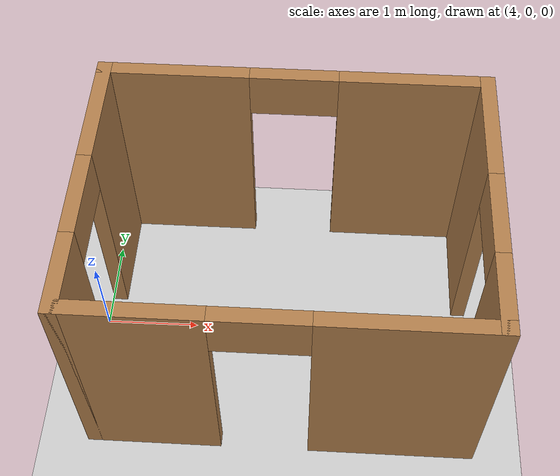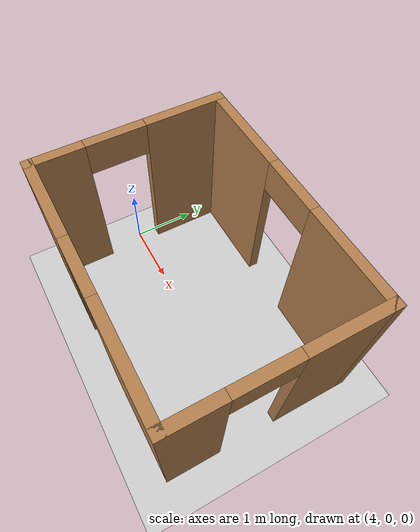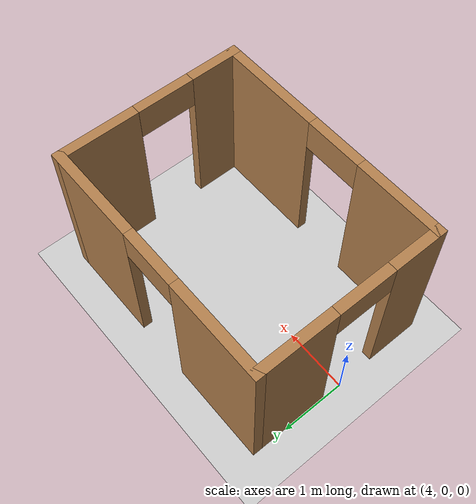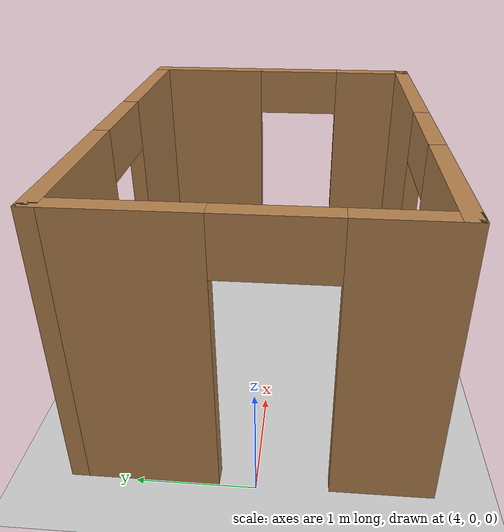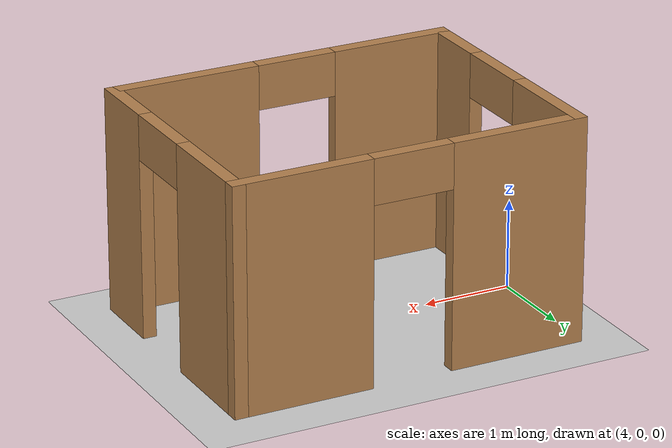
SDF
<sdf version="1.7">
 <world name="default">
  <light name="sun" type="directional">
   <pose>0 0 10 0 -0 0</pose>
   <diffuse>0.8 0.8 0.8 1</diffuse>
   <specular>0.2 0.2 0.2 1</specular>
   <attenuation>
    <range>1000</range>
    <constant>0.9</constant>
    <linear>0.01</linear>
    <quadratic>0.001</quadratic>
   </attenuation>
   <direction>-0.5 0.1 -0.9</direction>
   <spot><inner_angle>0</inner_angle><outer_angle>0</outer_angle><falloff>0</falloff></spot>
  </light>
  <model name="ground_plane">
   <static>1</static>
   <link name="link">
    <collision name="collision">
     <geometry><plane><normal>0 0 1</normal><size>100 100</size></plane></geometry>
     <surface><friction><ode><mu>100</mu><mu2>50</mu2></ode></friction></surface>
    </collision>
    <visual name="visual">
     <cast_shadows>0</cast_shadows>
     <geometry><plane><normal>0 0 1</normal><size>100 100</size></plane></geometry>
     <material>
      <script><uri>file://media/materials/scripts/gazebo.material</uri><name>Gazebo/Grey</name></script>
     </material>
    </visual>
   </link>
  </model>
  <gravity>0 0 -9.8</gravity>
  <magnetic_field>6e-06 2.3e-05 -4.2e-05</magnetic_field>
  <atmosphere type="adiabatic"/>
  <physics type="ode">
   <max_step_size>0.001</max_step_size>
   <real_time_factor>1</real_time_factor>
   <real_time_update_rate>1000</real_time_update_rate>
  </physics>
  <scene><ambient>0.4 0.4 0.4 1</ambient><background>0.7 0.7 0.7 1</background><shadows>1</shadows></scene>
  <spherical_coordinates>
   <surface_model>EARTH_WGS84</surface_model>
   <latitude_deg>0</latitude_deg>
   <longitude_deg>0</longitude_deg>
   <elevation>0</elevation>
   <heading_deg>0</heading_deg>
  </spherical_coordinates>
  <model name="3_4house和">
   <pose>6.01198 0.053385 0 0 -0 0</pose>
   <link name="Wall_0">
    <pose>0 -1.425 0 0 -0 0</pose>
    <visual name="Wall_0_Visual_0">
     <pose>-1.3025 0 1.25 0 -0 0</pose>
     <geometry><box><size>1.395 0.15 2.5</size></box></geometry>
     <material>
      <script><uri>file://media/materials/scripts/gazebo.material</uri><name>Gazebo/Wood</name></script>
      <ambient>1 1 1 1</ambient>
     </material>
     <meta><layer>0</layer></meta>
    </visual>
    <collision name="Wall_0_Collision_0">
     <geometry><box><size>1.395 0.15 2.5</size></box></geometry>
     <pose>-1.3025 0 1.25 0 -0 0</pose>
    </collision>
    <visual name="Wall_0_Visual_1">
     <pose>1.1475 0 1.25 0 -0 0</pose>
     <geometry><box><size>1.705 0.15 2.5</size></box></geometry>
     <material>
      <script><uri>file://media/materials/scripts/gazebo.material</uri><name>Gazebo/Wood</name></script>
      <ambient>1 1 1 1</ambient>
     </material>
     <meta><layer>0</layer></meta>
    </visual>
    <collision name="Wall_0_Collision_1">
     <geometry><box><size>1.705 0.15 2.5</size></box></geometry>
     <pose>1.1475 0 1.25 0 -0 0</pose>
    </collision>
    <visual name="Wall_0_Visual_2">
     <pose>-0.155 0 2.25 0 -0 0</pose>
     <geometry><box><size>0.9 0.15 0.5</size></box></geometry>
     <material>
      <script><uri>file://media/materials/scripts/gazebo.material</uri><name>Gazebo/Wood</name></script>
      <ambient>1 1 1 1</ambient>
     </material>
     <meta><layer>0</layer></meta>
    </visual>
    <collision name="Wall_0_Collision_2">
     <geometry><box><size>0.9 0.15 0.5</size></box></geometry>
     <pose>-0.155 0 2.25 0 -0 0</pose>
    </collision>
   </link>
   <link name="Wall_1">
    <pose>1.925 0 0 0 -0 1.5708</pose>
    <visual name="Wall_1_Visual_0">
     <pose>-1.08089 0 1.25 0 -0 0</pose>
     <geometry><box><size>0.83821 0.15 2.5</size></box></geometry>
     <material>
      <script><uri>file://media/materials/scripts/gazebo.material</uri><name>Gazebo/Wood</name></script>
      <ambient>1 1 1 1</ambient>
     </material>
     <meta><layer>0</layer></meta>
    </visual>
    <collision name="Wall_1_Collision_0">
     <geometry><box><size>0.83821 0.15 2.5</size></box></geometry>
     <pose>-1.08089 0 1.25 0 -0 0</pose>
    </collision>
    <visual name="Wall_1_Visual_1">
     <pose>0.869105 0 1.25 0 -0 0</pose>
     <geometry><box><size>1.26179 0.15 2.5</size></box></geometry>
     <material>
      <script><uri>file://media/materials/scripts/gazebo.material</uri><name>Gazebo/Wood</name></script>
      <ambient>1 1 1 1</ambient>
     </material>
     <meta><layer>0</layer></meta>
    </visual>
    <collision name="Wall_1_Collision_1">
     <geometry><box><size>1.26179 0.15 2.5</size></box></geometry>
     <pose>0.869105 0 1.25 0 -0 0</pose>
    </collision>
    <visual name="Wall_1_Visual_2">
     <pose>-0.21179 0 2.25 0 -0 0</pose>
     <geometry><box><size>0.9 0.15 0.5</size></box></geometry>
     <material>
      <script><uri>file://media/materials/scripts/gazebo.material</uri><name>Gazebo/Wood</name></script>
      <ambient>1 1 1 1</ambient>
     </material>
     <meta><layer>0</layer></meta>
    </visual>
    <collision name="Wall_1_Collision_2">
     <geometry><box><size>0.9 0.15 0.5</size></box></geometry>
     <pose>-0.21179 0 2.25 0 -0 0</pose>
    </collision>
   </link>
   <link name="Wall_2">
    <pose>0 1.425 0 0 -0 3.14159</pose>
    <visual name="Wall_2_Visual_0">
     <pose>-1.22225 0 1.25 0 -0 0</pose>
     <geometry><box><size>1.5555 0.15 2.5</size></box></geometry>
     <material>
      <script><uri>file://media/materials/scripts/gazebo.material</uri><name>Gazebo/Wood</name></script>
      <ambient>1 1 1 1</ambient>
     </material>
     <meta><layer>0</layer></meta>
    </visual>
    <collision name="Wall_2_Collision_0">
     <geometry><box><size>1.5555 0.15 2.5</size></box></geometry>
     <pose>-1.22225 0 1.25 0 -0 0</pose>
    </collision>
    <visual name="Wall_2_Visual_1">
     <pose>1.22775 0 1.25 0 -0 0</pose>
     <geometry><box><size>1.5445 0.15 2.5</size></box></geometry>
     <material>
      <script><uri>file://media/materials/scripts/gazebo.material</uri><name>Gazebo/Wood</name></script>
      <ambient>1 1 1 1</ambient>
     </material>
     <meta><layer>0</layer></meta>
    </visual>
    <collision name="Wall_2_Collision_1">
     <geometry><box><size>1.5445 0.15 2.5</size></box></geometry>
     <pose>1.22775 0 1.25 0 -0 0</pose>
    </collision>
    <visual name="Wall_2_Visual_2">
     <pose>0.0055 0 2.25 0 -0 0</pose>
     <geometry><box><size>0.9 0.15 0.5</size></box></geometry>
     <material>
      <script><uri>file://media/materials/scripts/gazebo.material</uri><name>Gazebo/Wood</name></script>
      <ambient>1 1 1 1</ambient>
     </material>
     <meta><layer>0</layer></meta>
    </visual>
    <collision name="Wall_2_Collision_2">
     <geometry><box><size>0.9 0.15 0.5</size></box></geometry>
     <pose>0.0055 0 2.25 0 -0 0</pose>
    </collision>
   </link>
   <link name="Wall_3">
    <pose>-1.925 0 0 0 -0 -1.5708</pose>
    <visual name="Wall_3_Visual_0">
     <pose>-0.87625 0 1.25 0 -0 0</pose>
     <geometry><box><size>1.2475 0.15 2.5</size></box></geometry>
     <material>
      <script><uri>file://media/materials/scripts/gazebo.material</uri><name>Gazebo/Wood</name></script>
      <ambient>1 1 1 1</ambient>
     </material>
     <meta><layer>0</layer></meta>
    </visual>
    <collision name="Wall_3_Collision_0">
     <geometry><box><size>1.2475 0.15 2.5</size></box></geometry>
     <pose>-0.87625 0 1.25 0 -0 0</pose>
    </collision>
    <visual name="Wall_3_Visual_1">
     <pose>1.07375 0 1.25 0 -0 0</pose>
     <geometry><box><size>0.8525 0.15 2.5</size></box></geometry>
     <material>
      <script><uri>file://media/materials/scripts/gazebo.material</uri><name>Gazebo/Wood</name></script>
      <ambient>1 1 1 1</ambient>
     </material>
     <meta><layer>0</layer></meta>
    </visual>
    <collision name="Wall_3_Collision_1">
     <geometry><box><size>0.8525 0.15 2.5</size></box></geometry>
     <pose>1.07375 0 1.25 0 -0 0</pose>
    </collision>
    <visual name="Wall_3_Visual_2">
     <pose>0.1975 0 2.25 0 -0 0</pose>
     <geometry><box><size>0.9 0.15 0.5</size></box></geometry>
     <material>
      <script><uri>file://media/materials/scripts/gazebo.material</uri><name>Gazebo/Wood</name></script>
      <ambient>1 1 1 1</ambient>
     </material>
     <meta><layer>0</layer></meta>
    </visual>
    <collision name="Wall_3_Collision_2">
     <geometry><box><size>0.9 0.15 0.5</size></box></geometry>
     <pose>0.1975 0 2.25 0 -0 0</pose>
    </collision>
   </link>
   <static>1</static>
  </model>
 </world>
</sdf>
